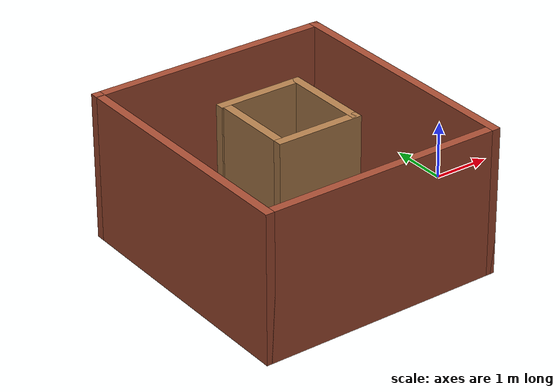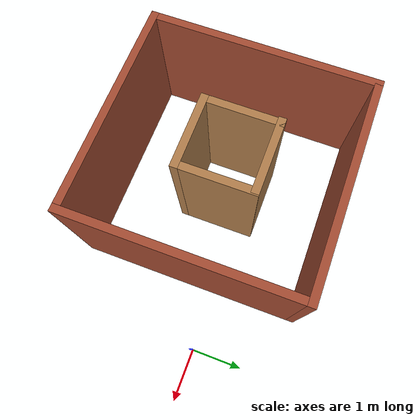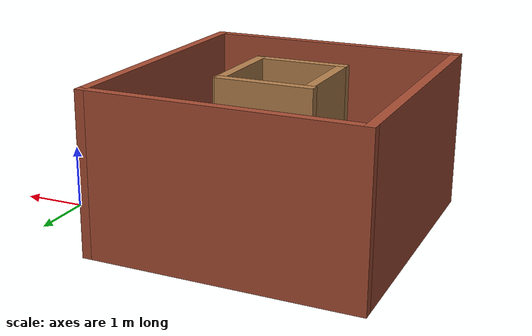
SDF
<?xml version='1.0'?>
<sdf version='1.7'>
  <model name='Simple-Box'>
    <pose>-2.7255 -0.544074 0 0 -0 0</pose>
    <link name='Wall_0'>
      <collision name='Wall_0_Collision'>
        <geometry>
          <box>
            <size>4.25 0.15 2.5</size>
          </box>
        </geometry>
        <pose>0 0 1.25 0 -0 0</pose>
      </collision>
      <visual name='Wall_0_Visual'>
        <pose>0 0 1.25 0 -0 0</pose>
        <geometry>
          <box>
            <size>4.25 0.15 2.5</size>
          </box>
        </geometry>
        <material>
          <script>
            <uri>file://media/materials/scripts/gazebo.material</uri>
            <name>Gazebo/Bricks</name>
          </script>
          <ambient>1 1 1 1</ambient>
        </material>
        <meta>
          <layer>0</layer>
        </meta>
      </visual>
      <pose>-0.600498 -2.175 0 0 -0 0</pose>
    </link>
    <link name='Wall_1'>
      <collision name='Wall_1_Collision'>
        <geometry>
          <box>
            <size>4.5 0.15 2.5</size>
          </box>
        </geometry>
        <pose>0 0 1.25 0 -0 0</pose>
      </collision>
      <visual name='Wall_1_Visual'>
        <pose>0 0 1.25 0 -0 0</pose>
        <geometry>
          <box>
            <size>4.5 0.15 2.5</size>
          </box>
        </geometry>
        <material>
          <script>
            <uri>file://media/materials/scripts/gazebo.material</uri>
            <name>Gazebo/Bricks</name>
          </script>
          <ambient>1 1 1 1</ambient>
        </material>
        <meta>
          <layer>0</layer>
        </meta>
      </visual>
      <pose>1.4495 -0 0 0 -0 1.5708</pose>
    </link>
    <link name='Wall_2'>
      <collision name='Wall_2_Collision'>
        <geometry>
          <box>
            <size>4.25 0.15 2.5</size>
          </box>
        </geometry>
        <pose>0 0 1.25 0 -0 0</pose>
      </collision>
      <visual name='Wall_2_Visual'>
        <pose>0 0 1.25 0 -0 0</pose>
        <geometry>
          <box>
            <size>4.25 0.15 2.5</size>
          </box>
        </geometry>
        <material>
          <script>
            <uri>file://media/materials/scripts/gazebo.material</uri>
            <name>Gazebo/Bricks</name>
          </script>
          <ambient>1 1 1 1</ambient>
        </material>
        <meta>
          <layer>0</layer>
        </meta>
      </visual>
      <pose>-0.600498 2.175 0 0 -0 3.14159</pose>
    </link>
    <link name='Wall_3'>
      <collision name='Wall_3_Collision'>
        <geometry>
          <box>
            <size>4.5 0.15 2.5</size>
          </box>
        </geometry>
        <pose>0 0 1.25 0 -0 0</pose>
      </collision>
      <visual name='Wall_3_Visual'>
        <pose>0 0 1.25 0 -0 0</pose>
        <geometry>
          <box>
            <size>4.5 0.15 2.5</size>
          </box>
        </geometry>
        <material>
          <script>
            <uri>file://media/materials/scripts/gazebo.material</uri>
            <name>Gazebo/Bricks</name>
          </script>
          <ambient>1 1 1 1</ambient>
        </material>
        <meta>
          <layer>0</layer>
        </meta>
      </visual>
      <pose>-2.6505 -0 0 0 -0 -1.5708</pose>
    </link>
    <link name='Wall_5'>
      <collision name='Wall_5_Collision'>
        <geometry>
          <box>
            <size>1.5 0.15 2.5</size>
          </box>
        </geometry>
        <pose>0 0 1.25 0 -0 0</pose>
      </collision>
      <visual name='Wall_5_Visual'>
        <pose>0 0 1.25 0 -0 0</pose>
        <geometry>
          <box>
            <size>1.5 0.15 2.5</size>
          </box>
        </geometry>
        <material>
          <script>
            <uri>file://media/materials/scripts/gazebo.material</uri>
            <name>Gazebo/Wood</name>
          </script>
          <ambient>1 1 1 1</ambient>
        </material>
        <meta>
          <layer>0</layer>
        </meta>
      </visual>
      <pose>-0.654332 0.774973 0 0 -0 0</pose>
    </link>
    <link name='Wall_6'>
      <collision name='Wall_6_Collision'>
        <geometry>
          <box>
            <size>1.55299 0.15 2.5</size>
          </box>
        </geometry>
        <pose>0 0 1.25 0 -0 0</pose>
      </collision>
      <visual name='Wall_6_Visual'>
        <pose>0 0 1.25 0 -0 0</pose>
        <geometry>
          <box>
            <size>1.55299 0.15 2.5</size>
          </box>
        </geometry>
        <material>
          <script>
            <uri>file://media/materials/scripts/gazebo.material</uri>
            <name>Gazebo/Wood</name>
          </script>
          <ambient>1 1 1 1</ambient>
        </material>
        <meta>
          <layer>0</layer>
        </meta>
      </visual>
      <pose>0.047268 0.073477 0 0 -0 -1.5708</pose>
    </link>
    <link name='Wall_7'>
      <collision name='Wall_7_Collision'>
        <geometry>
          <box>
            <size>1.5 0.15 2.5</size>
          </box>
        </geometry>
        <pose>0 0 1.25 0 -0 0</pose>
      </collision>
      <visual name='Wall_7_Visual'>
        <pose>0 0 1.25 0 -0 0</pose>
        <geometry>
          <box>
            <size>1.5 0.15 2.5</size>
          </box>
        </geometry>
        <material>
          <script>
            <uri>file://media/materials/scripts/gazebo.material</uri>
            <name>Gazebo/Wood</name>
          </script>
          <ambient>1 1 1 1</ambient>
        </material>
        <meta>
          <layer>0</layer>
        </meta>
      </visual>
      <pose>-0.627732 -0.654619 0 0 -0 3.14159</pose>
    </link>
    <link name='Wall_8'>
      <collision name='Wall_8_Collision'>
        <geometry>
          <box>
            <size>1.55299 0.15 2.5</size>
          </box>
        </geometry>
        <pose>0 0 1.25 0 -0 0</pose>
      </collision>
      <visual name='Wall_8_Visual'>
        <pose>0 0 1.25 0 -0 0</pose>
        <geometry>
          <box>
            <size>1.55299 0.15 2.5</size>
          </box>
        </geometry>
        <material>
          <script>
            <uri>file://media/materials/scripts/gazebo.material</uri>
            <name>Gazebo/Wood</name>
          </script>
          <ambient>1 1 1 1</ambient>
        </material>
        <meta>
          <layer>0</layer>
        </meta>
      </visual>
      <pose>-1.30273 0.073477 0 0 -0 1.5708</pose>
    </link>
    <static>1</static>
  </model>
</sdf>
